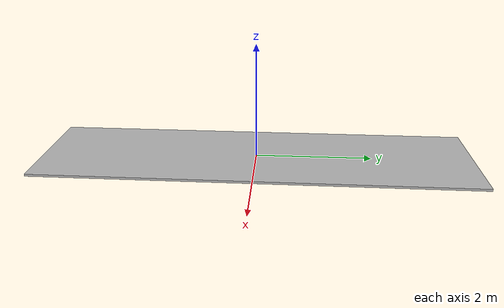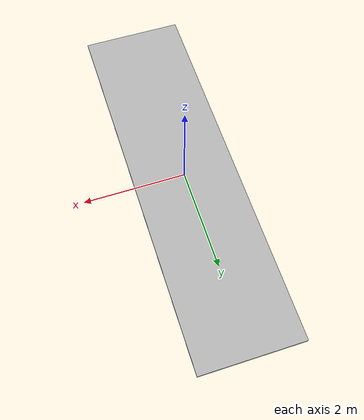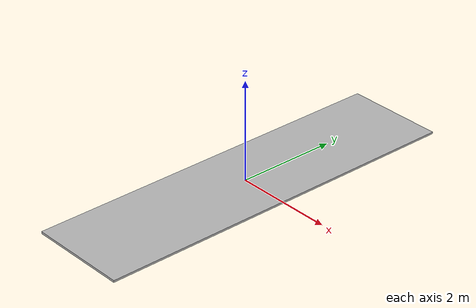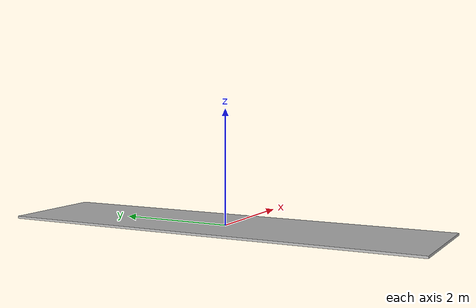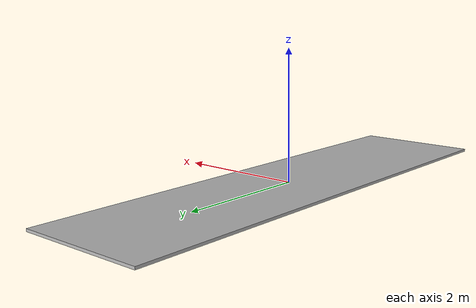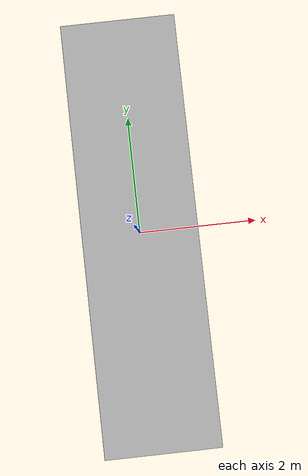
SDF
<?xml version='1.0'?>
<sdf version='1.6'>
		<model name="testvar">
			<self_collide>true</self_collide>
			<pose>0.0 0.0 0.0 0.0 0.0 0.0</pose>
			<!-- Start of parts of the pmodel testvar -->
				<!-- Start of declarations for part "testvar::BASE" -->
					<!-- Start of parts of part "testvar::BASE" -->
					<!-- End of parts of part "testvar::BASE" -->

					<!-- Start of links of part "testvar::BASE" -->
					<!-- link full name is testvar::BASE::Core -->
					<link name="1-Core">
							<pose>0.0 0.0 0.0 0.0 0.0 0.0</pose>
							<inertial>
								<pose>0.0 0.0 0.0 0.0 0.0 0.0</pose>
								<inertia>
									<ixx>1.0</ixx>
									<ixy>0.0</ixy>
									<ixz>0.0</ixz>
									<iyy>1.0</iyy>
									<iyz>0.0</iyz>
									<izz>1.0</izz>
								</inertia>
								<mass>1.0</mass>
							</inertial>
							<!-- body full name is testvar::BASE::Core::Spine -->
							<collision name="1--Spine">
								<laser_retro>0.0</laser_retro>
								<pose>0.0 0.0 0.0 0.0 0.0 0.0</pose>
								<geometry>
									<box>
										<size>2.0 7.5 0.03999999910593033</size>
									</box>
								</geometry>
								<surface>
									<bounce>
										<restitution_coefficient>0.0</restitution_coefficient>
										<threshold>100000.0</threshold>
									</bounce>
									<friction>
										<ode>
											<mu>1.0</mu>
											<mu2>1.0</mu2>
											<fdir1>0.0 0.0 0.0</fdir1>
											<slip1>0.0</slip1>
											<slip2>0.0</slip2>
										</ode>
										<torsional>
											<coefficient>1.0</coefficient>
											<surface_radius>0.0</surface_radius>
										</torsional>
									</friction>
								</surface>
							</collision>
							<visual name="1--Spine">
								<laser_retro>0.0</laser_retro>
								<pose>0.0 0.0 0.0 0.0 0.0 0.0</pose>
								<geometry>
									<box>
										<size>2.0 7.5 0.03999999910593033</size>
									</box>
								</geometry>
								<surface>
									<bounce>
										<restitution_coefficient>0.0</restitution_coefficient>
										<threshold>100000.0</threshold>
									</bounce>
									<friction>
										<ode>
											<mu>1.0</mu>
											<mu2>1.0</mu2>
											<fdir1>0.0 0.0 0.0</fdir1>
											<slip1>0.0</slip1>
											<slip2>0.0</slip2>
										</ode>
										<torsional>
											<coefficient>1.0</coefficient>
											<surface_radius>0.0</surface_radius>
										</torsional>
									</friction>
								</surface>
							</visual>
					</link>
					<!-- End of links of part "testvar::BASE" -->

					<!-- Start of joints of part "testvar::BASE" -->
					<!-- End of joints of part "testvar::BASE" -->

					<!-- Start of fixed connections of part "testvar::BASE" -->

					<!-- End of fixed connections of part "testvar::BASE" -->
				<!-- End of declarations for part "testvar::BASE" -->
			<!-- End of parts of the pmodel testvar -->

			<!-- Start of links of the pmodel testvar -->
			<!-- End of links of the pmodel testvar -->

			<!-- Start of joints of the pmodel testvar -->
			<!-- End of joints of the pmodel testvar -->

			<!-- Start of fixed connections of the pmodel testvar -->
			<!-- End of fixed connections of the pmodel testvar -->
		</model>
</sdf>
